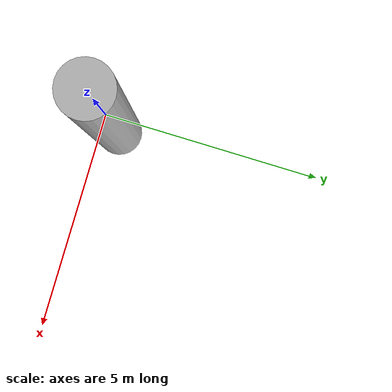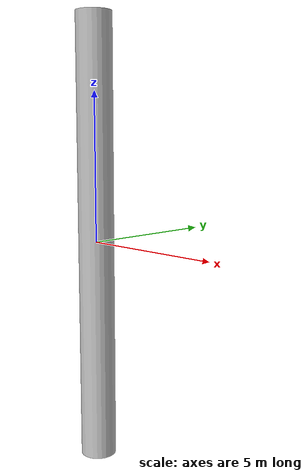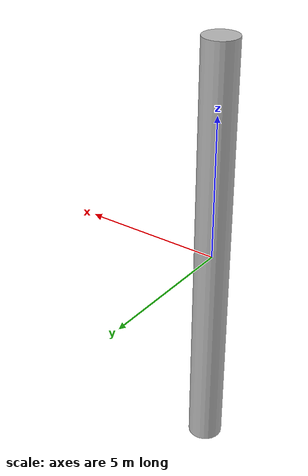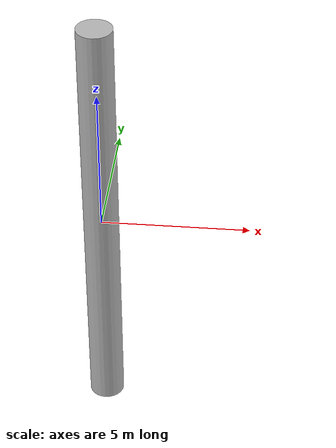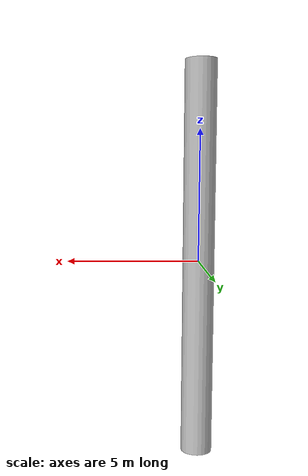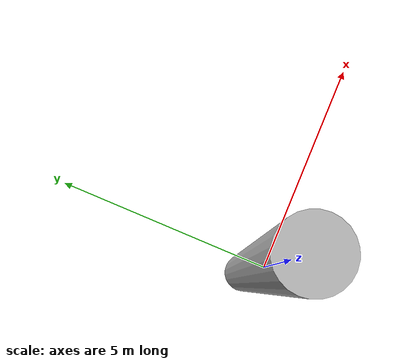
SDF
<?xml version="1.0" ?>
<sdf version="1.5">
  <model name="obstacle_1">
    <static>false</static>
    <link name="link">
      <pose>0 0 0 0 0 0</pose>
      <collision name="collision">
        <geometry>
          <cylinder>
              <radius>0.6</radius>
              <length>15.0</length>
          </cylinder>
        </geometry>
      </collision>
      <visual name="visual">
        <geometry>
          <cylinder>
              <radius>0.6</radius>
              <length>15.0</length>
          </cylinder>
        </geometry>
      </visual>
    </link>
  </model>
</sdf>
